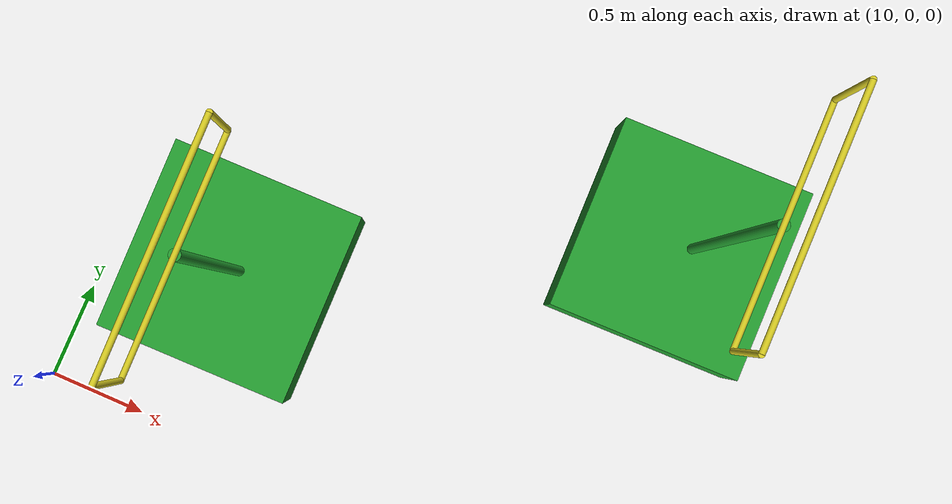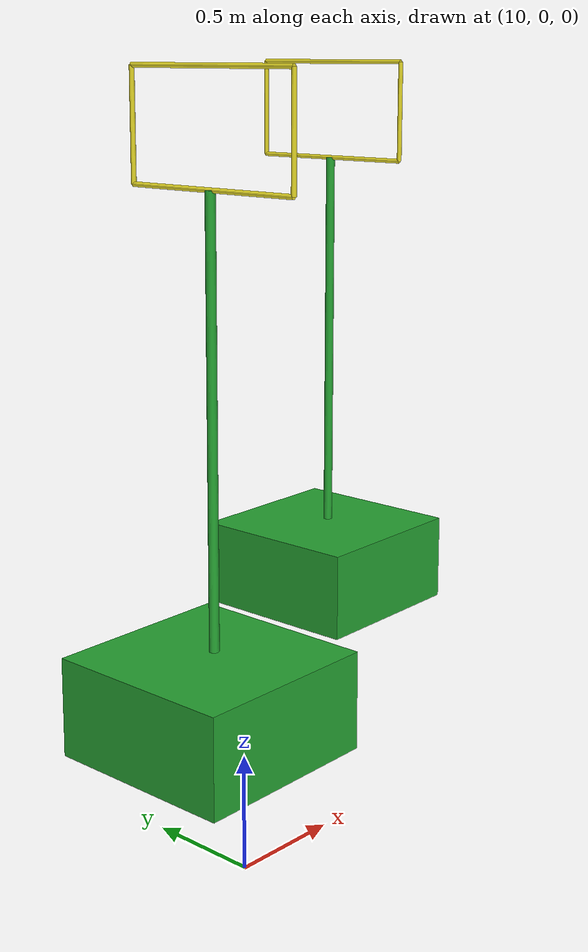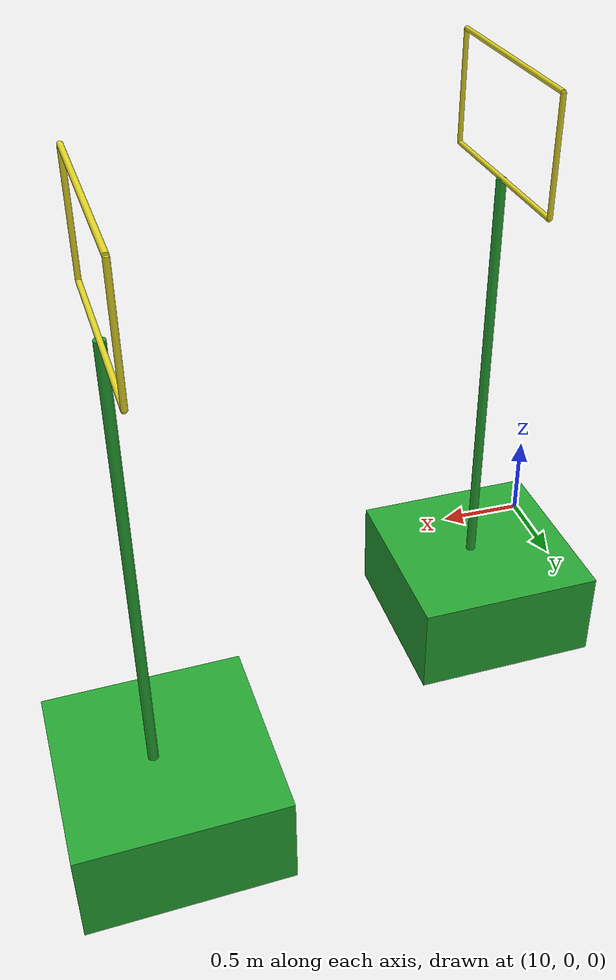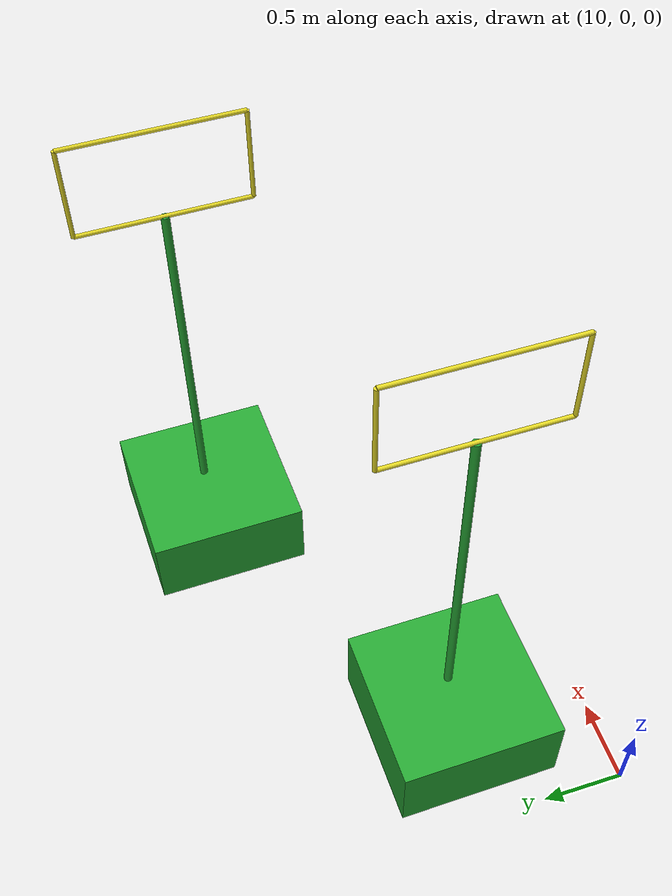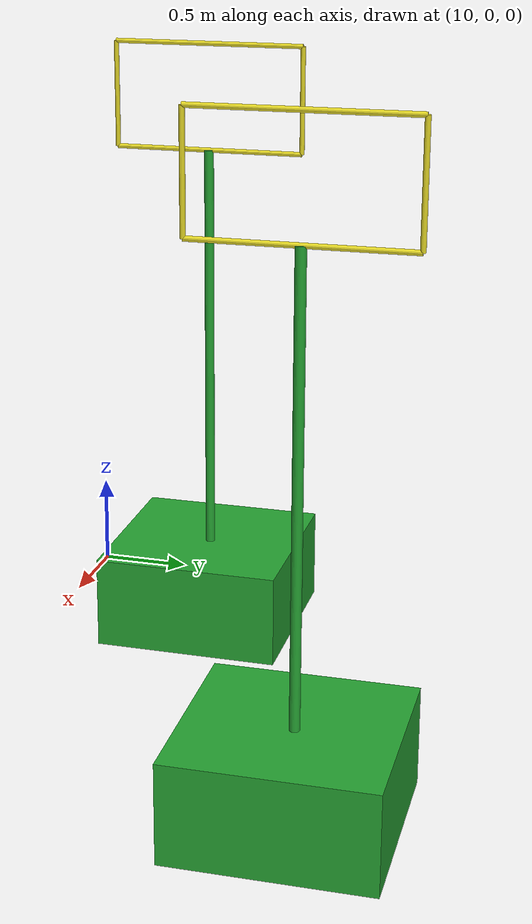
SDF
<sdf version="1.6">
 <world name="vrc_task_1">
  <model name="flipkart_hoop_clone_5">
   <link name="link_0">
    <inertial>
     <mass>0.530306</mass>
     <inertia>
      <ixx>0.0566207</ixx>
      <ixy>0</ixy>
      <ixz>0</ixz>
      <iyy>0.0566207</iyy>
      <iyz>0</iyz>
      <izz>0.0883844</izz>
     </inertia>
    </inertial>
    <pose>0.141833 0.667401 -1.68595 0 -0 0</pose>
    <visual name="visual">
     <geometry><box><size>1 1 0.5</size></box></geometry>
     <material>
      <lighting>1</lighting>
      <script><uri>file://media/materials/scripts/gazebo.material</uri><name>Gazebo/Green</name></script>
      <shader type="pixel"/>
      <emissive>0 0 0 1</emissive>
     </material>
    </visual>
    <collision name="collision">
     <geometry><box><size>1 1 0.5</size></box></geometry>
     <surface>
      <friction>
       <ode><mu>1</mu><mu2>1</mu2><fdir1>0 0 0</fdir1><slip1>0</slip1><slip2>0</slip2></ode>
       <torsional>
        <coefficient>1</coefficient>
        <patch_radius>0</patch_radius>
        <surface_radius>0</surface_radius>
        <use_patch_radius>1</use_patch_radius>
        <ode><slip>0</slip></ode>
       </torsional>
      </friction>
      <bounce><restitution_coefficient>0</restitution_coefficient><threshold>1e+06</threshold></bounce>
      <contact>
       <collide_without_contact>0</collide_without_contact>
       <collide_without_contact_bitmask>1</collide_without_contact_bitmask>
       <collide_bitmask>1</collide_bitmask>
       <ode>
        <soft_cfm>0</soft_cfm>
        <soft_erp>0.2</soft_erp>
        <kp>1e+13</kp>
        <kd>1</kd>
        <max_vel>0.01</max_vel>
        <min_depth>0</min_depth>
       </ode>
       <bullet>
        <split_impulse>1</split_impulse>
        <split_impulse_penetration_threshold>-0.01</split_impulse_penetration_threshold>
        <soft_cfm>0</soft_cfm>
        <soft_erp>0.2</soft_erp>
        <kp>1e+13</kp>
        <kd>1</kd>
       </bullet>
      </contact>
     </surface>
    </collision>
   </link>
   <link name="link_1">
    <inertial>
     <mass>0.25</mass>
     <inertia>
      <ixx>0.130247</ixx>
      <ixy>0</ixy>
      <ixz>0</ixz>
      <iyy>0.130247</iyy>
      <iyz>0</iyz>
      <izz>7.813e-05</izz>
     </inertia>
    </inertial>
    <pose>0.122412 0.714194 -0.478486 0 -0 0</pose>
    <visual name="visual">
     <geometry><cylinder><radius>0.025</radius><length>2.5</length></cylinder></geometry>
     <material>
      <lighting>1</lighting>
      <script><uri>file://media/materials/scripts/gazebo.material</uri><name>Gazebo/Green</name></script>
      <shader type="pixel"/>
      <emissive>0 0 0 1</emissive>
     </material>
    </visual>
    <collision name="collision">
     <geometry><cylinder><radius>0.025</radius><length>2.5</length></cylinder></geometry>
     <surface>
      <friction>
       <ode><mu>1</mu><mu2>1</mu2><fdir1>0 0 0</fdir1><slip1>0</slip1><slip2>0</slip2></ode>
       <torsional>
        <coefficient>1</coefficient>
        <patch_radius>0</patch_radius>
        <surface_radius>0</surface_radius>
        <use_patch_radius>1</use_patch_radius>
        <ode><slip>0</slip></ode>
       </torsional>
      </friction>
      <bounce><restitution_coefficient>0</restitution_coefficient><threshold>1e+06</threshold></bounce>
      <contact>
       <collide_without_contact>0</collide_without_contact>
       <collide_without_contact_bitmask>1</collide_without_contact_bitmask>
       <collide_bitmask>1</collide_bitmask>
       <ode>
        <soft_cfm>0</soft_cfm>
        <soft_erp>0.2</soft_erp>
        <kp>1e+13</kp>
        <kd>1</kd>
        <max_vel>0.01</max_vel>
        <min_depth>0</min_depth>
       </ode>
       <bullet>
        <split_impulse>1</split_impulse>
        <split_impulse_penetration_threshold>-0.01</split_impulse_penetration_threshold>
        <soft_cfm>0</soft_cfm>
        <soft_erp>0.2</soft_erp>
        <kp>1e+13</kp>
        <kd>1</kd>
       </bullet>
      </contact>
     </surface>
    </collision>
   </link>
   <link name="link_2">
    <inertial>
     <mass>0.05</mass>
     <inertia>
      <ixx>0.00416862</ixx>
      <ixy>0</ixy>
      <ixz>0</ixz>
      <iyy>0.00416862</iyy>
      <iyz>0</iyz>
      <izz>3.91e-06</izz>
     </inertia>
    </inertial>
    <pose>0.122412 0.714194 1.32141 1.57 -0 1.57</pose>
    <visual name="visual">
     <geometry><cylinder><radius>0.0125</radius><length>1</length></cylinder></geometry>
     <material>
      <lighting>1</lighting>
      <script><uri>file://media/materials/scripts/gazebo.material</uri><name>Gazebo/Yellow</name></script>
      <shader type="pixel"/>
      <emissive>0 0 0 1</emissive>
     </material>
    </visual>
    <collision name="collision">
     <geometry><cylinder><radius>0.0125</radius><length>1</length></cylinder></geometry>
     <surface>
      <friction>
       <ode><mu>1</mu><mu2>1</mu2><fdir1>0 0 0</fdir1><slip1>0</slip1><slip2>0</slip2></ode>
       <torsional>
        <coefficient>1</coefficient>
        <patch_radius>0</patch_radius>
        <surface_radius>0</surface_radius>
        <use_patch_radius>1</use_patch_radius>
        <ode><slip>0</slip></ode>
       </torsional>
      </friction>
      <bounce><restitution_coefficient>0</restitution_coefficient><threshold>1e+06</threshold></bounce>
      <contact>
       <collide_without_contact>0</collide_without_contact>
       <collide_without_contact_bitmask>1</collide_without_contact_bitmask>
       <collide_bitmask>1</collide_bitmask>
       <ode>
        <soft_cfm>0</soft_cfm>
        <soft_erp>0.2</soft_erp>
        <kp>1e+13</kp>
        <kd>1</kd>
        <max_vel>0.01</max_vel>
        <min_depth>0</min_depth>
       </ode>
       <bullet>
        <split_impulse>1</split_impulse>
        <split_impulse_penetration_threshold>-0.01</split_impulse_penetration_threshold>
        <soft_cfm>0</soft_cfm>
        <soft_erp>0.2</soft_erp>
        <kp>1e+13</kp>
        <kd>1</kd>
       </bullet>
      </contact>
     </surface>
    </collision>
   </link>
   <link name="link_2_clone_0">
    <inertial>
     <mass>0.05</mass>
     <inertia>
      <ixx>0.00416862</ixx>
      <ixy>0</ixy>
      <ixz>0</ixz>
      <iyy>0.00416862</iyy>
      <iyz>0</iyz>
      <izz>3.91e-06</izz>
     </inertia>
    </inertial>
    <pose>0.122412 0.714194 0.771414 1.57 -0 1.57</pose>
    <visual name="visual">
     <geometry><cylinder><radius>0.0125</radius><length>1</length></cylinder></geometry>
     <material>
      <lighting>1</lighting>
      <script><uri>file://media/materials/scripts/gazebo.material</uri><name>Gazebo/Yellow</name></script>
      <shader type="pixel"/>
      <emissive>0 0 0 1</emissive>
     </material>
    </visual>
    <collision name="collision">
     <geometry><cylinder><radius>0.0125</radius><length>1</length></cylinder></geometry>
     <surface>
      <friction>
       <ode><mu>1</mu><mu2>1</mu2><fdir1>0 0 0</fdir1><slip1>0</slip1><slip2>0</slip2></ode>
       <torsional>
        <coefficient>1</coefficient>
        <patch_radius>0</patch_radius>
        <surface_radius>0</surface_radius>
        <use_patch_radius>1</use_patch_radius>
        <ode><slip>0</slip></ode>
       </torsional>
      </friction>
      <bounce><restitution_coefficient>0</restitution_coefficient><threshold>1e+06</threshold></bounce>
      <contact>
       <collide_without_contact>0</collide_without_contact>
       <collide_without_contact_bitmask>1</collide_without_contact_bitmask>
       <collide_bitmask>1</collide_bitmask>
       <ode>
        <soft_cfm>0</soft_cfm>
        <soft_erp>0.2</soft_erp>
        <kp>1e+13</kp>
        <kd>1</kd>
        <max_vel>0.01</max_vel>
        <min_depth>0</min_depth>
       </ode>
       <bullet>
        <split_impulse>1</split_impulse>
        <split_impulse_penetration_threshold>-0.01</split_impulse_penetration_threshold>
        <soft_cfm>0</soft_cfm>
        <soft_erp>0.2</soft_erp>
        <kp>1e+13</kp>
        <kd>1</kd>
       </bullet>
      </contact>
     </surface>
    </collision>
   </link>
   <link name="link_3_clone_clone">
    <inertial>
     <mass>0.025</mass>
     <inertia>
      <ixx>0.00063118</ixx>
      <ixy>0</ixy>
      <ixz>0</ixz>
      <iyy>0.00063118</iyy>
      <iyz>0</iyz>
      <izz>1.95e-06</izz>
     </inertia>
    </inertial>
    <pose>-0.377588 0.714194 1.04641 8e-06 -0 8e-06</pose>
    <visual name="visual">
     <geometry><cylinder><radius>0.0125</radius><length>0.55</length></cylinder></geometry>
     <material>
      <lighting>1</lighting>
      <script><uri>file://media/materials/scripts/gazebo.material</uri><name>Gazebo/Yellow</name></script>
      <shader type="pixel"/>
      <emissive>0 0 0 1</emissive>
     </material>
    </visual>
    <collision name="collision">
     <geometry><cylinder><radius>0.0125</radius><length>0.55</length></cylinder></geometry>
     <surface>
      <friction>
       <ode><mu>1</mu><mu2>1</mu2><fdir1>0 0 0</fdir1><slip1>0</slip1><slip2>0</slip2></ode>
       <torsional>
        <coefficient>1</coefficient>
        <patch_radius>0</patch_radius>
        <surface_radius>0</surface_radius>
        <use_patch_radius>1</use_patch_radius>
        <ode><slip>0</slip></ode>
       </torsional>
      </friction>
      <bounce><restitution_coefficient>0</restitution_coefficient><threshold>1e+06</threshold></bounce>
      <contact>
       <collide_without_contact>0</collide_without_contact>
       <collide_without_contact_bitmask>1</collide_without_contact_bitmask>
       <collide_bitmask>1</collide_bitmask>
       <ode>
        <soft_cfm>0</soft_cfm>
        <soft_erp>0.2</soft_erp>
        <kp>1e+13</kp>
        <kd>1</kd>
        <max_vel>0.01</max_vel>
        <min_depth>0</min_depth>
       </ode>
       <bullet>
        <split_impulse>1</split_impulse>
        <split_impulse_penetration_threshold>-0.01</split_impulse_penetration_threshold>
        <soft_cfm>0</soft_cfm>
        <soft_erp>0.2</soft_erp>
        <kp>1e+13</kp>
        <kd>1</kd>
       </bullet>
      </contact>
     </surface>
    </collision>
   </link>
   <link name="link_3_clone_clone_clone">
    <inertial>
     <mass>0.025</mass>
     <inertia>
      <ixx>0.00063118</ixx>
      <ixy>0</ixy>
      <ixz>0</ixz>
      <iyy>0.00063118</iyy>
      <iyz>0</iyz>
      <izz>1.95e-06</izz>
     </inertia>
    </inertial>
    <pose>0.622412 0.714194 1.04641 5.7e-05 -0 5.7e-05</pose>
    <visual name="visual">
     <geometry><cylinder><radius>0.0125</radius><length>0.55</length></cylinder></geometry>
     <material>
      <lighting>1</lighting>
      <script><uri>file://media/materials/scripts/gazebo.material</uri><name>Gazebo/Yellow</name></script>
      <shader type="pixel"/>
      <emissive>0 0 0 1</emissive>
     </material>
    </visual>
    <collision name="collision">
     <geometry><cylinder><radius>0.0125</radius><length>0.55</length></cylinder></geometry>
     <surface>
      <friction>
       <ode><mu>1</mu><mu2>1</mu2><fdir1>0 0 0</fdir1><slip1>0</slip1><slip2>0</slip2></ode>
       <torsional>
        <coefficient>1</coefficient>
        <patch_radius>0</patch_radius>
        <surface_radius>0</surface_radius>
        <use_patch_radius>1</use_patch_radius>
        <ode><slip>0</slip></ode>
       </torsional>
      </friction>
      <bounce><restitution_coefficient>0</restitution_coefficient><threshold>1e+06</threshold></bounce>
      <contact>
       <collide_without_contact>0</collide_without_contact>
       <collide_without_contact_bitmask>1</collide_without_contact_bitmask>
       <collide_bitmask>1</collide_bitmask>
       <ode>
        <soft_cfm>0</soft_cfm>
        <soft_erp>0.2</soft_erp>
        <kp>1e+13</kp>
        <kd>1</kd>
        <max_vel>0.01</max_vel>
        <min_depth>0</min_depth>
       </ode>
       <bullet>
        <split_impulse>1</split_impulse>
        <split_impulse_penetration_threshold>-0.01</split_impulse_penetration_threshold>
        <soft_cfm>0</soft_cfm>
        <soft_erp>0.2</soft_erp>
        <kp>1e+13</kp>
        <kd>1</kd>
       </bullet>
      </contact>
     </surface>
    </collision>
   </link>
   <joint name="link_0_JOINT_0" type="fixed">
    <parent>link_0</parent>
    <child>link_1</child>
    <physics>
     <ode><limit><cfm>0</cfm><erp>0.2</erp></limit><suspension><cfm>0</cfm><erp>0.2</erp></suspension></ode>
    </physics>
   </joint>
   <joint name="link_1_JOINT_0" type="fixed">
    <parent>link_1</parent>
    <child>link_2_clone_0</child>
    <physics>
     <ode><limit><cfm>0</cfm><erp>0.2</erp></limit><suspension><cfm>0</cfm><erp>0.2</erp></suspension></ode>
    </physics>
   </joint>
   <joint name="link_2_JOINT_2" type="fixed">
    <parent>link_2</parent>
    <child>link_3_clone_clone_clone</child>
    <physics>
     <ode><limit><cfm>0</cfm><erp>0.2</erp></limit><suspension><cfm>0</cfm><erp>0.2</erp></suspension></ode>
    </physics>
   </joint>
   <joint name="link_2_clone_0_JOINT_4" type="fixed">
    <parent>link_2_clone_0</parent>
    <child>link_3_clone_clone</child>
    <physics>
     <ode><limit><cfm>0</cfm><erp>0.2</erp></limit><suspension><cfm>0</cfm><erp>0.2</erp></suspension></ode>
    </physics>
   </joint>
   <joint name="link_3_clone_clone_JOINT_1" type="fixed">
    <parent>link_3_clone_clone</parent>
    <child>link_2</child>
    <physics>
     <ode><limit><cfm>0</cfm><erp>0.2</erp></limit><suspension><cfm>0</cfm><erp>0.2</erp></suspension></ode>
    </physics>
   </joint>
   <joint name="link_3_clone_clone_clone_JOINT_3" type="fixed">
    <parent>link_3_clone_clone_clone</parent>
    <child>link_2_clone_0</child>
    <physics>
     <ode><limit><cfm>0</cfm><erp>0.2</erp></limit><suspension><cfm>0</cfm><erp>0.2</erp></suspension></ode>
    </physics>
   </joint>
   <static>0</static>
   <pose>10.0004 0.999496 1.93592 1e-06 5.9e-05 -1.55306</pose>
  </model>
  <model name="flipkart_hoop_clone_7">
   <link name="link_0">
    <inertial>
     <mass>0.530306</mass>
     <inertia>
      <ixx>0.0566207</ixx>
      <ixy>0</ixy>
      <ixz>0</ixz>
      <iyy>0.0566207</iyy>
      <iyz>0</iyz>
      <izz>0.0883844</izz>
     </inertia>
    </inertial>
    <pose>0.141833 0.667401 -1.68595 0 -0 0</pose>
    <visual name="visual">
     <geometry><box><size>1 1 0.5</size></box></geometry>
     <material>
      <lighting>1</lighting>
      <script><uri>file://media/materials/scripts/gazebo.material</uri><name>Gazebo/Green</name></script>
      <shader type="pixel"/>
      <emissive>0 0 0 1</emissive>
     </material>
    </visual>
    <collision name="collision">
     <geometry><box><size>1 1 0.5</size></box></geometry>
     <surface>
      <friction>
       <ode><mu>1</mu><mu2>1</mu2><fdir1>0 0 0</fdir1><slip1>0</slip1><slip2>0</slip2></ode>
       <torsional>
        <coefficient>1</coefficient>
        <patch_radius>0</patch_radius>
        <surface_radius>0</surface_radius>
        <use_patch_radius>1</use_patch_radius>
        <ode><slip>0</slip></ode>
       </torsional>
      </friction>
      <bounce><restitution_coefficient>0</restitution_coefficient><threshold>1e+06</threshold></bounce>
      <contact>
       <collide_without_contact>0</collide_without_contact>
       <collide_without_contact_bitmask>1</collide_without_contact_bitmask>
       <collide_bitmask>1</collide_bitmask>
       <ode>
        <soft_cfm>0</soft_cfm>
        <soft_erp>0.2</soft_erp>
        <kp>1e+13</kp>
        <kd>1</kd>
        <max_vel>0.01</max_vel>
        <min_depth>0</min_depth>
       </ode>
       <bullet>
        <split_impulse>1</split_impulse>
        <split_impulse_penetration_threshold>-0.01</split_impulse_penetration_threshold>
        <soft_cfm>0</soft_cfm>
        <soft_erp>0.2</soft_erp>
        <kp>1e+13</kp>
        <kd>1</kd>
       </bullet>
      </contact>
     </surface>
    </collision>
   </link>
   <link name="link_1">
    <inertial>
     <mass>0.25</mass>
     <inertia>
      <ixx>0.130247</ixx>
      <ixy>0</ixy>
      <ixz>0</ixz>
      <iyy>0.130247</iyy>
      <iyz>0</iyz>
      <izz>7.813e-05</izz>
     </inertia>
    </inertial>
    <pose>0.122412 0.714194 -0.478486 0 -0 0</pose>
    <visual name="visual">
     <geometry><cylinder><radius>0.025</radius><length>2.5</length></cylinder></geometry>
     <material>
      <lighting>1</lighting>
      <script><uri>file://media/materials/scripts/gazebo.material</uri><name>Gazebo/Green</name></script>
      <shader type="pixel"/>
      <emissive>0 0 0 1</emissive>
     </material>
    </visual>
    <collision name="collision">
     <geometry><cylinder><radius>0.025</radius><length>2.5</length></cylinder></geometry>
     <surface>
      <friction>
       <ode><mu>1</mu><mu2>1</mu2><fdir1>0 0 0</fdir1><slip1>0</slip1><slip2>0</slip2></ode>
       <torsional>
        <coefficient>1</coefficient>
        <patch_radius>0</patch_radius>
        <surface_radius>0</surface_radius>
        <use_patch_radius>1</use_patch_radius>
        <ode><slip>0</slip></ode>
       </torsional>
      </friction>
      <bounce><restitution_coefficient>0</restitution_coefficient><threshold>1e+06</threshold></bounce>
      <contact>
       <collide_without_contact>0</collide_without_contact>
       <collide_without_contact_bitmask>1</collide_without_contact_bitmask>
       <collide_bitmask>1</collide_bitmask>
       <ode>
        <soft_cfm>0</soft_cfm>
        <soft_erp>0.2</soft_erp>
        <kp>1e+13</kp>
        <kd>1</kd>
        <max_vel>0.01</max_vel>
        <min_depth>0</min_depth>
       </ode>
       <bullet>
        <split_impulse>1</split_impulse>
        <split_impulse_penetration_threshold>-0.01</split_impulse_penetration_threshold>
        <soft_cfm>0</soft_cfm>
        <soft_erp>0.2</soft_erp>
        <kp>1e+13</kp>
        <kd>1</kd>
       </bullet>
      </contact>
     </surface>
    </collision>
   </link>
   <link name="link_2">
    <inertial>
     <mass>0.05</mass>
     <inertia>
      <ixx>0.00416862</ixx>
      <ixy>0</ixy>
      <ixz>0</ixz>
      <iyy>0.00416862</iyy>
      <iyz>0</iyz>
      <izz>3.91e-06</izz>
     </inertia>
    </inertial>
    <pose>0.122412 0.714194 1.32141 1.57 -0 1.57</pose>
    <visual name="visual">
     <geometry><cylinder><radius>0.0125</radius><length>1</length></cylinder></geometry>
     <material>
      <lighting>1</lighting>
      <script><uri>file://media/materials/scripts/gazebo.material</uri><name>Gazebo/Yellow</name></script>
      <shader type="pixel"/>
      <emissive>0 0 0 1</emissive>
     </material>
    </visual>
    <collision name="collision">
     <geometry><cylinder><radius>0.0125</radius><length>1</length></cylinder></geometry>
     <surface>
      <friction>
       <ode><mu>1</mu><mu2>1</mu2><fdir1>0 0 0</fdir1><slip1>0</slip1><slip2>0</slip2></ode>
       <torsional>
        <coefficient>1</coefficient>
        <patch_radius>0</patch_radius>
        <surface_radius>0</surface_radius>
        <use_patch_radius>1</use_patch_radius>
        <ode><slip>0</slip></ode>
       </torsional>
      </friction>
      <bounce><restitution_coefficient>0</restitution_coefficient><threshold>1e+06</threshold></bounce>
      <contact>
       <collide_without_contact>0</collide_without_contact>
       <collide_without_contact_bitmask>1</collide_without_contact_bitmask>
       <collide_bitmask>1</collide_bitmask>
       <ode>
        <soft_cfm>0</soft_cfm>
        <soft_erp>0.2</soft_erp>
        <kp>1e+13</kp>
        <kd>1</kd>
        <max_vel>0.01</max_vel>
        <min_depth>0</min_depth>
       </ode>
       <bullet>
        <split_impulse>1</split_impulse>
        <split_impulse_penetration_threshold>-0.01</split_impulse_penetration_threshold>
        <soft_cfm>0</soft_cfm>
        <soft_erp>0.2</soft_erp>
        <kp>1e+13</kp>
        <kd>1</kd>
       </bullet>
      </contact>
     </surface>
    </collision>
   </link>
   <link name="link_2_clone_0">
    <inertial>
     <mass>0.05</mass>
     <inertia>
      <ixx>0.00416862</ixx>
      <ixy>0</ixy>
      <ixz>0</ixz>
      <iyy>0.00416862</iyy>
      <iyz>0</iyz>
      <izz>3.91e-06</izz>
     </inertia>
    </inertial>
    <pose>0.122412 0.714194 0.771414 1.57 -0 1.57</pose>
    <visual name="visual">
     <geometry><cylinder><radius>0.0125</radius><length>1</length></cylinder></geometry>
     <material>
      <lighting>1</lighting>
      <script><uri>file://media/materials/scripts/gazebo.material</uri><name>Gazebo/Yellow</name></script>
      <shader type="pixel"/>
      <emissive>0 0 0 1</emissive>
     </material>
    </visual>
    <collision name="collision">
     <geometry><cylinder><radius>0.0125</radius><length>1</length></cylinder></geometry>
     <surface>
      <friction>
       <ode><mu>1</mu><mu2>1</mu2><fdir1>0 0 0</fdir1><slip1>0</slip1><slip2>0</slip2></ode>
       <torsional>
        <coefficient>1</coefficient>
        <patch_radius>0</patch_radius>
        <surface_radius>0</surface_radius>
        <use_patch_radius>1</use_patch_radius>
        <ode><slip>0</slip></ode>
       </torsional>
      </friction>
      <bounce><restitution_coefficient>0</restitution_coefficient><threshold>1e+06</threshold></bounce>
      <contact>
       <collide_without_contact>0</collide_without_contact>
       <collide_without_contact_bitmask>1</collide_without_contact_bitmask>
       <collide_bitmask>1</collide_bitmask>
       <ode>
        <soft_cfm>0</soft_cfm>
        <soft_erp>0.2</soft_erp>
        <kp>1e+13</kp>
        <kd>1</kd>
        <max_vel>0.01</max_vel>
        <min_depth>0</min_depth>
       </ode>
       <bullet>
        <split_impulse>1</split_impulse>
        <split_impulse_penetration_threshold>-0.01</split_impulse_penetration_threshold>
        <soft_cfm>0</soft_cfm>
        <soft_erp>0.2</soft_erp>
        <kp>1e+13</kp>
        <kd>1</kd>
       </bullet>
      </contact>
     </surface>
    </collision>
   </link>
   <link name="link_3_clone_clone">
    <inertial>
     <mass>0.025</mass>
     <inertia>
      <ixx>0.00063118</ixx>
      <ixy>0</ixy>
      <ixz>0</ixz>
      <iyy>0.00063118</iyy>
      <iyz>0</iyz>
      <izz>1.95e-06</izz>
     </inertia>
    </inertial>
    <pose>-0.377588 0.714194 1.04641 8e-06 -0 8e-06</pose>
    <visual name="visual">
     <geometry><cylinder><radius>0.0125</radius><length>0.55</length></cylinder></geometry>
     <material>
      <lighting>1</lighting>
      <script><uri>file://media/materials/scripts/gazebo.material</uri><name>Gazebo/Yellow</name></script>
      <shader type="pixel"/>
      <emissive>0 0 0 1</emissive>
     </material>
    </visual>
    <collision name="collision">
     <geometry><cylinder><radius>0.0125</radius><length>0.55</length></cylinder></geometry>
     <surface>
      <friction>
       <ode><mu>1</mu><mu2>1</mu2><fdir1>0 0 0</fdir1><slip1>0</slip1><slip2>0</slip2></ode>
       <torsional>
        <coefficient>1</coefficient>
        <patch_radius>0</patch_radius>
        <surface_radius>0</surface_radius>
        <use_patch_radius>1</use_patch_radius>
        <ode><slip>0</slip></ode>
       </torsional>
      </friction>
      <bounce><restitution_coefficient>0</restitution_coefficient><threshold>1e+06</threshold></bounce>
      <contact>
       <collide_without_contact>0</collide_without_contact>
       <collide_without_contact_bitmask>1</collide_without_contact_bitmask>
       <collide_bitmask>1</collide_bitmask>
       <ode>
        <soft_cfm>0</soft_cfm>
        <soft_erp>0.2</soft_erp>
        <kp>1e+13</kp>
        <kd>1</kd>
        <max_vel>0.01</max_vel>
        <min_depth>0</min_depth>
       </ode>
       <bullet>
        <split_impulse>1</split_impulse>
        <split_impulse_penetration_threshold>-0.01</split_impulse_penetration_threshold>
        <soft_cfm>0</soft_cfm>
        <soft_erp>0.2</soft_erp>
        <kp>1e+13</kp>
        <kd>1</kd>
       </bullet>
      </contact>
     </surface>
    </collision>
   </link>
   <link name="link_3_clone_clone_clone">
    <inertial>
     <mass>0.025</mass>
     <inertia>
      <ixx>0.00063118</ixx>
      <ixy>0</ixy>
      <ixz>0</ixz>
      <iyy>0.00063118</iyy>
      <iyz>0</iyz>
      <izz>1.95e-06</izz>
     </inertia>
    </inertial>
    <pose>0.622412 0.714194 1.04641 5.7e-05 -0 5.7e-05</pose>
    <visual name="visual">
     <geometry><cylinder><radius>0.0125</radius><length>0.55</length></cylinder></geometry>
     <material>
      <lighting>1</lighting>
      <script><uri>file://media/materials/scripts/gazebo.material</uri><name>Gazebo/Yellow</name></script>
      <shader type="pixel"/>
      <emissive>0 0 0 1</emissive>
     </material>
    </visual>
    <collision name="collision">
     <geometry><cylinder><radius>0.0125</radius><length>0.55</length></cylinder></geometry>
     <surface>
      <friction>
       <ode><mu>1</mu><mu2>1</mu2><fdir1>0 0 0</fdir1><slip1>0</slip1><slip2>0</slip2></ode>
       <torsional>
        <coefficient>1</coefficient>
        <patch_radius>0</patch_radius>
        <surface_radius>0</surface_radius>
        <use_patch_radius>1</use_patch_radius>
        <ode><slip>0</slip></ode>
       </torsional>
      </friction>
      <bounce><restitution_coefficient>0</restitution_coefficient><threshold>1e+06</threshold></bounce>
      <contact>
       <collide_without_contact>0</collide_without_contact>
       <collide_without_contact_bitmask>1</collide_without_contact_bitmask>
       <collide_bitmask>1</collide_bitmask>
       <ode>
        <soft_cfm>0</soft_cfm>
        <soft_erp>0.2</soft_erp>
        <kp>1e+13</kp>
        <kd>1</kd>
        <max_vel>0.01</max_vel>
        <min_depth>0</min_depth>
       </ode>
       <bullet>
        <split_impulse>1</split_impulse>
        <split_impulse_penetration_threshold>-0.01</split_impulse_penetration_threshold>
        <soft_cfm>0</soft_cfm>
        <soft_erp>0.2</soft_erp>
        <kp>1e+13</kp>
        <kd>1</kd>
       </bullet>
      </contact>
     </surface>
    </collision>
   </link>
   <joint name="link_0_JOINT_0" type="fixed">
    <parent>link_0</parent>
    <child>link_1</child>
    <physics>
     <ode><limit><cfm>0</cfm><erp>0.2</erp></limit><suspension><cfm>0</cfm><erp>0.2</erp></suspension></ode>
    </physics>
   </joint>
   <joint name="link_1_JOINT_0" type="fixed">
    <parent>link_1</parent>
    <child>link_2_clone_0</child>
    <physics>
     <ode><limit><cfm>0</cfm><erp>0.2</erp></limit><suspension><cfm>0</cfm><erp>0.2</erp></suspension></ode>
    </physics>
   </joint>
   <joint name="link_2_JOINT_2" type="fixed">
    <parent>link_2</parent>
    <child>link_3_clone_clone_clone</child>
    <physics>
     <ode><limit><cfm>0</cfm><erp>0.2</erp></limit><suspension><cfm>0</cfm><erp>0.2</erp></suspension></ode>
    </physics>
   </joint>
   <joint name="link_2_clone_0_JOINT_4" type="fixed">
    <parent>link_2_clone_0</parent>
    <child>link_3_clone_clone</child>
    <physics>
     <ode><limit><cfm>0</cfm><erp>0.2</erp></limit><suspension><cfm>0</cfm><erp>0.2</erp></suspension></ode>
    </physics>
   </joint>
   <joint name="link_3_clone_clone_JOINT_1" type="fixed">
    <parent>link_3_clone_clone</parent>
    <child>link_2</child>
    <physics>
     <ode><limit><cfm>0</cfm><erp>0.2</erp></limit><suspension><cfm>0</cfm><erp>0.2</erp></suspension></ode>
    </physics>
   </joint>
   <joint name="link_3_clone_clone_clone_JOINT_3" type="fixed">
    <parent>link_3_clone_clone_clone</parent>
    <child>link_2_clone_0</child>
    <physics>
     <ode><limit><cfm>0</cfm><erp>0.2</erp></limit><suspension><cfm>0</cfm><erp>0.2</erp></suspension></ode>
    </physics>
   </joint>
   <static>0</static>
   <pose>12.0006 2.001 1.93595 0 -1e-05 -1.5426</pose>
  </model>
 </world>
</sdf>
